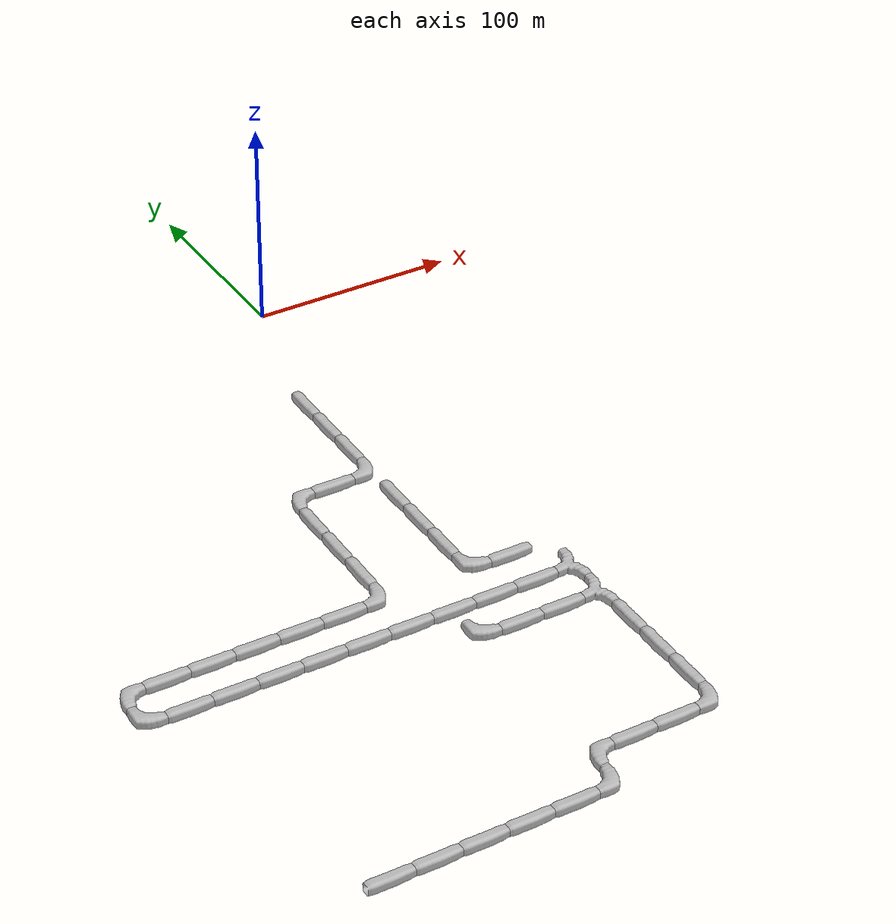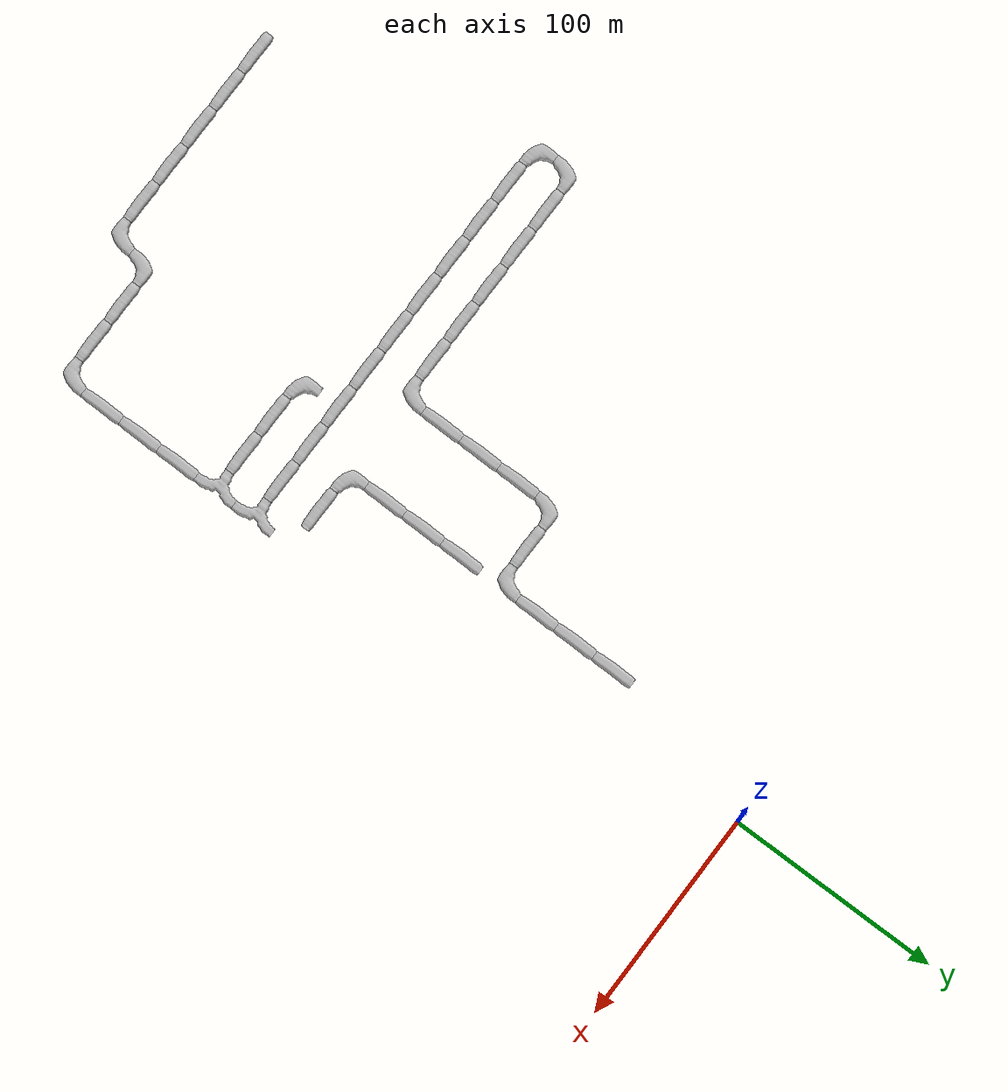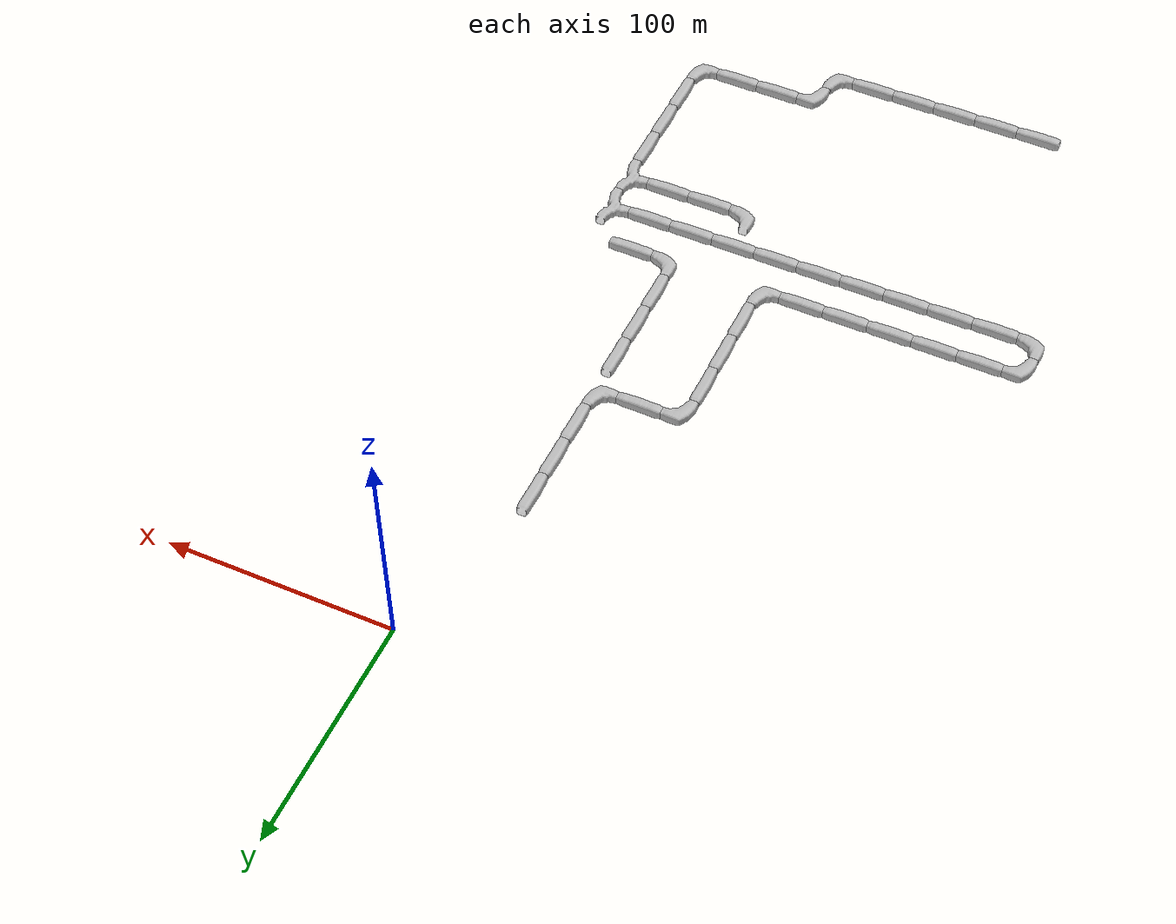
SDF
<sdf version="1.6">
 <world name="cave_4000">
  <include>
   <static>true</static>
   <name>cave_-1_-4</name>
   <pose>-20 -80 0 0 0 0.0</pose>
   <uri>model://cave_straight_20m</uri>
  </include>
  <include>
   <static>true</static>
   <name>cave_-1_-5</name>
   <pose>-20 -100 0 0 0 0.0</pose>
   <uri>model://cave_straight_20m</uri>
  </include>
  <include>
   <static>true</static>
   <name>cave_-1_-6</name>
   <pose>-20 -120 0 0 0 0.0</pose>
   <uri>model://cave_straight_20m</uri>
  </include>
  <include>
   <static>true</static>
   <name>cave_-1_-7</name>
   <pose>-20 -140 0 0 0 1.5707963267948966</pose>
   <uri>model://cave_L_20m</uri>
  </include>
  <include>
   <static>true</static>
   <name>cave_-2_-7</name>
   <pose>-40 -140 0 0 0 1.5707963267948966</pose>
   <uri>model://cave_straight_20m</uri>
  </include>
  <include>
   <static>true</static>
   <name>cave_-3_-7</name>
   <pose>-60 -140 0 0 0 -1.5707963267948966</pose>
   <uri>model://cave_L_20m</uri>
  </include>
  <include>
   <static>true</static>
   <name>cave_-3_-8</name>
   <pose>-60 -160 0 0 0 0.0</pose>
   <uri>model://cave_straight_20m</uri>
  </include>
  <include>
   <static>true</static>
   <name>cave_-3_-9</name>
   <pose>-60 -180 0 0 0 0.0</pose>
   <uri>model://cave_straight_20m</uri>
  </include>
  <include>
   <static>true</static>
   <name>cave_-3_-10</name>
   <pose>-60 -200 0 0 0 0.0</pose>
   <uri>model://cave_straight_20m</uri>
  </include>
  <include>
   <static>true</static>
   <name>cave_-3_-11</name>
   <pose>-60 -220 0 0 0 1.5707963267948966</pose>
   <uri>model://cave_L_20m</uri>
  </include>
  <include>
   <static>true</static>
   <name>cave_-4_-11</name>
   <pose>-80 -220 0 0 0 1.5707963267948966</pose>
   <uri>model://cave_straight_20m</uri>
  </include>
  <include>
   <static>true</static>
   <name>cave_-5_-11</name>
   <pose>-100 -220 0 0 0 1.5707963267948966</pose>
   <uri>model://cave_straight_20m</uri>
  </include>
  <include>
   <static>true</static>
   <name>cave_-6_-11</name>
   <pose>-120 -220 0 0 0 1.5707963267948966</pose>
   <uri>model://cave_straight_20m</uri>
  </include>
  <include>
   <static>true</static>
   <name>cave_-7_-11</name>
   <pose>-140 -220 0 0 0 1.5707963267948966</pose>
   <uri>model://cave_straight_20m</uri>
  </include>
  <include>
   <static>true</static>
   <name>cave_-8_-11</name>
   <pose>-160 -220 0 0 0 1.5707963267948966</pose>
   <uri>model://cave_straight_20m</uri>
  </include>
  <include>
   <static>true</static>
   <name>cave_-9_-11</name>
   <pose>-180 -220 0 0 0 -1.5707963267948966</pose>
   <uri>model://cave_L_20m</uri>
  </include>
  <include>
   <static>true</static>
   <name>cave_-9_-12</name>
   <pose>-180 -240 0 0 0 0.0</pose>
   <uri>model://cave_L_20m</uri>
  </include>
  <include>
   <static>true</static>
   <name>cave_-8_-12</name>
   <pose>-160 -240 0 0 0 1.5707963267948966</pose>
   <uri>model://cave_straight_20m</uri>
  </include>
  <include>
   <static>true</static>
   <name>cave_-7_-12</name>
   <pose>-140 -240 0 0 0 1.5707963267948966</pose>
   <uri>model://cave_straight_20m</uri>
  </include>
  <include>
   <static>true</static>
   <name>cave_-6_-12</name>
   <pose>-120 -240 0 0 0 1.5707963267948966</pose>
   <uri>model://cave_straight_20m</uri>
  </include>
  <include>
   <static>true</static>
   <name>cave_-5_-12</name>
   <pose>-100 -240 0 0 0 1.5707963267948966</pose>
   <uri>model://cave_straight_20m</uri>
  </include>
  <include>
   <static>true</static>
   <name>cave_-4_-12</name>
   <pose>-80 -240 0 0 0 1.5707963267948966</pose>
   <uri>model://cave_straight_20m</uri>
  </include>
  <include>
   <static>true</static>
   <name>cave_-3_-12</name>
   <pose>-60 -240 0 0 0 1.5707963267948966</pose>
   <uri>model://cave_straight_20m</uri>
  </include>
  <include>
   <static>true</static>
   <name>cave_-2_-12</name>
   <pose>-40 -240 0 0 0 1.5707963267948966</pose>
   <uri>model://cave_straight_20m</uri>
  </include>
  <include>
   <static>true</static>
   <name>cave_-1_-12</name>
   <pose>-20 -240 0 0 0 1.5707963267948966</pose>
   <uri>model://cave_straight_20m</uri>
  </include>
  <include>
   <static>true</static>
   <name>cave_0_-12</name>
   <pose>0 -240 0 0 0 1.5707963267948966</pose>
   <uri>model://cave_straight_20m</uri>
  </include>
  <include>
   <static>true</static>
   <name>cave_1_-12</name>
   <pose>20 -240 0 0 0 1.5707963267948966</pose>
   <uri>model://cave_3way_20m</uri>
  </include>
  <include>
   <static>true</static>
   <name>cave_1_-13</name>
   <pose>20 -260 0 0 0 1.5707963267948966</pose>
   <uri>model://cave_3way_20m</uri>
  </include>
  <include>
   <static>true</static>
   <name>cave_1_-14</name>
   <pose>20 -280 0 0 0 0.0</pose>
   <uri>model://cave_straight_20m</uri>
  </include>
  <include>
   <static>true</static>
   <name>cave_1_-15</name>
   <pose>20 -300 0 0 0 0.0</pose>
   <uri>model://cave_straight_20m</uri>
  </include>
  <include>
   <static>true</static>
   <name>cave_1_-16</name>
   <pose>20 -320 0 0 0 0.0</pose>
   <uri>model://cave_straight_20m</uri>
  </include>
  <include>
   <static>true</static>
   <name>cave_1_-17</name>
   <pose>20 -340 0 0 0 1.5707963267948966</pose>
   <uri>model://cave_L_20m</uri>
  </include>
  <include>
   <static>true</static>
   <name>cave_0_-17</name>
   <pose>0 -340 0 0 0 1.5707963267948966</pose>
   <uri>model://cave_straight_20m</uri>
  </include>
  <include>
   <static>true</static>
   <name>cave_-1_-17</name>
   <pose>-20 -340 0 0 0 1.5707963267948966</pose>
   <uri>model://cave_straight_20m</uri>
  </include>
  <include>
   <static>true</static>
   <name>cave_-2_-17</name>
   <pose>-40 -340 0 0 0 -1.5707963267948966</pose>
   <uri>model://cave_L_20m</uri>
  </include>
  <include>
   <static>true</static>
   <name>cave_-2_-18</name>
   <pose>-40 -360 0 0 0 1.5707963267948966</pose>
   <uri>model://cave_L_20m</uri>
  </include>
  <include>
   <static>true</static>
   <name>cave_-3_-18</name>
   <pose>-60 -360 0 0 0 1.5707963267948966</pose>
   <uri>model://cave_straight_20m</uri>
  </include>
  <include>
   <static>true</static>
   <name>cave_-4_-18</name>
   <pose>-80 -360 0 0 0 1.5707963267948966</pose>
   <uri>model://cave_straight_20m</uri>
  </include>
  <include>
   <static>true</static>
   <name>cave_-5_-18</name>
   <pose>-100 -360 0 0 0 1.5707963267948966</pose>
   <uri>model://cave_straight_20m</uri>
  </include>
  <include>
   <static>true</static>
   <name>cave_-6_-18</name>
   <pose>-120 -360 0 0 0 1.5707963267948966</pose>
   <uri>model://cave_straight_20m</uri>
  </include>
  <include>
   <static>true</static>
   <name>cave_-7_-18</name>
   <pose>-140 -360 0 0 0 1.5707963267948966</pose>
   <uri>model://cave_straight_20m</uri>
  </include>
  <include>
   <static>true</static>
   <name>cave_0_-13</name>
   <pose>0 -260 0 0 0 1.5707963267948966</pose>
   <uri>model://cave_straight_20m</uri>
  </include>
  <include>
   <static>true</static>
   <name>cave_-1_-13</name>
   <pose>-20 -260 0 0 0 1.5707963267948966</pose>
   <uri>model://cave_straight_20m</uri>
  </include>
  <include>
   <static>true</static>
   <name>cave_-2_-13</name>
   <pose>-40 -260 0 0 0 0.0</pose>
   <uri>model://cave_L_20m</uri>
  </include>
  <include>
   <static>true</static>
   <name>cave_0_-11</name>
   <pose>0 -220 0 0 0 1.5707963267948966</pose>
   <uri>model://cave_straight_20m</uri>
  </include>
  <include>
   <static>true</static>
   <name>cave_-1_-11</name>
   <pose>-20 -220 0 0 0 0.0</pose>
   <uri>model://cave_L_20m</uri>
  </include>
  <include>
   <static>true</static>
   <name>cave_-1_-10</name>
   <pose>-20 -200 0 0 0 0.0</pose>
   <uri>model://cave_straight_20m</uri>
  </include>
  <include>
   <static>true</static>
   <name>cave_-1_-9</name>
   <pose>-20 -180 0 0 0 0.0</pose>
   <uri>model://cave_straight_20m</uri>
  </include>
  <include>
   <static>true</static>
   <name>cave_-1_-8</name>
   <pose>-20 -160 0 0 0 0.0</pose>
   <uri>model://cave_straight_20m</uri>
  </include>
 </world>
</sdf>
